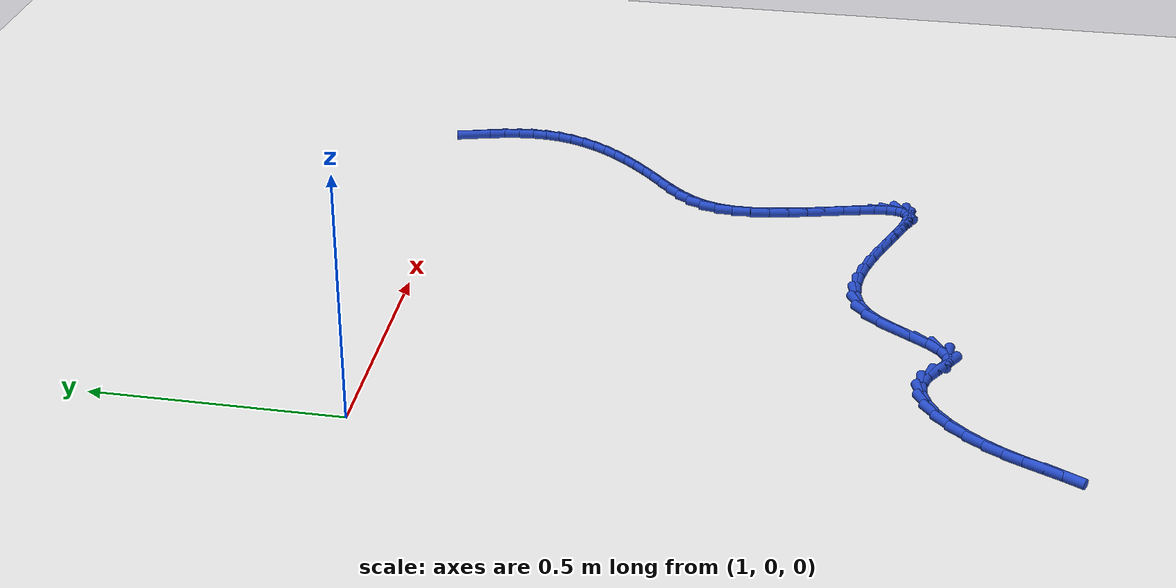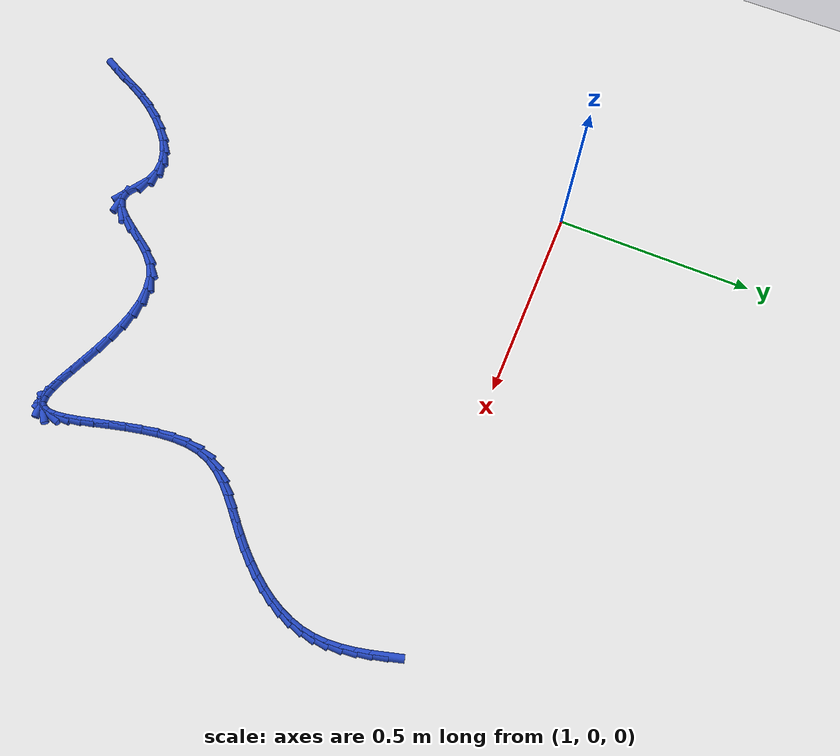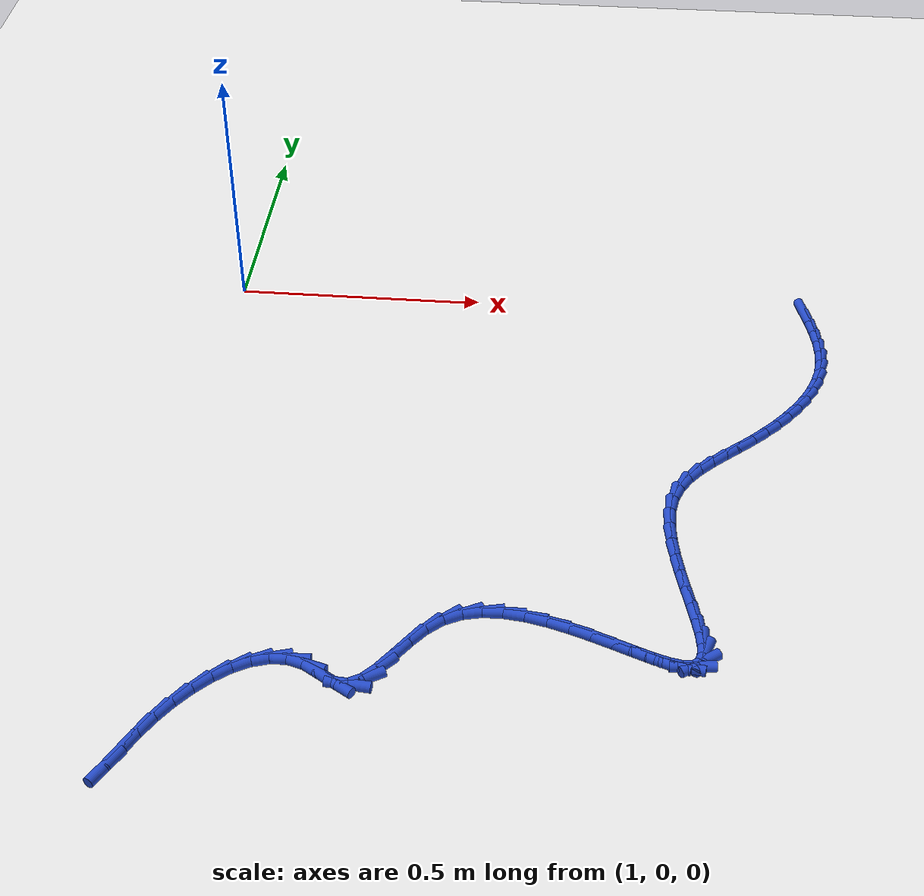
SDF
<sdf version="1.6">
 <world name="default">
  <model name="ground_plane">
   <static>1</static>
   <link name="link">
    <collision name="collision">
     <geometry><plane><normal>0 0 1</normal><size>100 100</size></plane></geometry>
     <surface><friction><ode><mu>100</mu><mu2>50</mu2></ode></friction></surface>
    </collision>
    <visual name="visual">
     <cast_shadows>0</cast_shadows>
     <geometry><plane><normal>0 0 1</normal><size>100 100</size></plane></geometry>
     <material>
      <script><uri>file://media/materials/scripts/gazebo.material</uri><name>Gazebo/WhiteGlow</name></script>
     </material>
    </visual>
   </link>
  </model>
  <model name="line">
   <link name="link_136">
    <pose>2.1801351254879155 0.005758020683772208 0.01 0 1.57 -1.301779435565862</pose>
    <collision name="collision">
     <geometry><cylinder><radius>0.01</radius><length>0.08</length></cylinder></geometry>
    </collision>
    <visual name="visual">
     <material>
      <script><name>Gazebo/Blue</name><uri>file://media/materials/scripts/gazebo.material</uri></script>
     </material>
     <geometry><cylinder><radius>0.01</radius><length>0.08</length></cylinder></geometry>
    </visual>
   </link>
   <link name="link_137">
    <pose>2.1896391408911238 -0.028714285961054346 0.01 0 1.57 -1.3454737841562365</pose>
    <collision name="collision">
     <geometry><cylinder><radius>0.01</radius><length>0.08</length></cylinder></geometry>
    </collision>
    <visual name="visual">
     <material>
      <script><name>Gazebo/Blue</name><uri>file://media/materials/scripts/gazebo.material</uri></script>
     </material>
     <geometry><cylinder><radius>0.01</radius><length>0.08</length></cylinder></geometry>
    </visual>
   </link>
   <link name="link_138">
    <pose>2.197482143768167 -0.06293110666666388 0.01 0 1.57 -1.4056809463743407</pose>
    <collision name="collision">
     <geometry><cylinder><radius>0.01</radius><length>0.08</length></cylinder></geometry>
    </collision>
    <visual name="visual">
     <material>
      <script><name>Gazebo/Blue</name><uri>file://media/materials/scripts/gazebo.material</uri></script>
     </material>
     <geometry><cylinder><radius>0.01</radius><length>0.08</length></cylinder></geometry>
    </visual>
   </link>
   <link name="link_139">
    <pose>2.2031158087223552 -0.0967400383906989 0.01 0 1.57 -1.4845112717701634</pose>
    <collision name="collision">
     <geometry><cylinder><radius>0.01</radius><length>0.08</length></cylinder></geometry>
    </collision>
    <visual name="visual">
     <material>
      <script><name>Gazebo/Blue</name><uri>file://media/materials/scripts/gazebo.material</uri></script>
     </material>
     <geometry><cylinder><radius>0.01</radius><length>0.08</length></cylinder></geometry>
    </visual>
   </link>
   <link name="link_140">
    <pose>2.2059918103569984 -0.12998867809080497 0.01 0 1.57 1.5575813408539083</pose>
    <collision name="collision">
     <geometry><cylinder><radius>0.01</radius><length>0.08</length></cylinder></geometry>
    </collision>
    <visual name="visual">
     <material>
      <script><name>Gazebo/Blue</name><uri>file://media/materials/scripts/gazebo.material</uri></script>
     </material>
     <geometry><cylinder><radius>0.01</radius><length>0.08</length></cylinder></geometry>
    </visual>
   </link>
   <link name="link_141">
    <pose>2.2055618232754073 -0.16252462272462764 0.01 0 1.57 1.4373398856692832</pose>
    <collision name="collision">
     <geometry><cylinder><radius>0.01</radius><length>0.08</length></cylinder></geometry>
    </collision>
    <visual name="visual">
     <material>
      <script><name>Gazebo/Blue</name><uri>file://media/materials/scripts/gazebo.material</uri></script>
     </material>
     <geometry><cylinder><radius>0.01</radius><length>0.08</length></cylinder></geometry>
    </visual>
   </link>
   <link name="link_142">
    <pose>2.201309160762779 -0.1942007630946006 0.01 0 1.57 1.3133021054380298</pose>
    <collision name="collision">
     <geometry><cylinder><radius>0.01</radius><length>0.08</length></cylinder></geometry>
    </collision>
    <visual name="visual">
     <material>
      <script><name>Gazebo/Blue</name><uri>file://media/materials/scripts/gazebo.material</uri></script>
     </material>
     <geometry><cylinder><radius>0.01</radius><length>0.08</length></cylinder></geometry>
    </visual>
   </link>
   <link name="link_143">
    <pose>2.193210960696452 -0.22495261767880384 0.01 0 1.57 1.2006109778874339</pose>
    <collision name="collision">
     <geometry><cylinder><radius>0.01</radius><length>0.08</length></cylinder></geometry>
    </collision>
    <visual name="visual">
     <material>
      <script><name>Gazebo/Blue</name><uri>file://media/materials/scripts/gazebo.material</uri></script>
     </material>
     <geometry><cylinder><radius>0.01</radius><length>0.08</length></cylinder></geometry>
    </visual>
   </link>
   <link name="link_144">
    <pose>2.1816352282022855 -0.2547811056112231 0.01 0 1.57 1.1010610410376571</pose>
    <collision name="collision">
     <geometry><cylinder><radius>0.01</radius><length>0.08</length></cylinder></geometry>
    </collision>
    <visual name="visual">
     <material>
      <script><name>Gazebo/Blue</name><uri>file://media/materials/scripts/gazebo.material</uri></script>
     </material>
     <geometry><cylinder><radius>0.01</radius><length>0.08</length></cylinder></geometry>
    </visual>
   </link>
   <link name="link_145">
    <pose>2.1669606620945356 -0.2836889353142515 0.01 0 1.57 1.0147438416265737</pose>
    <collision name="collision">
     <geometry><cylinder><radius>0.01</radius><length>0.08</length></cylinder></geometry>
    </collision>
    <visual name="visual">
     <material>
      <script><name>Gazebo/Blue</name><uri>file://media/materials/scripts/gazebo.material</uri></script>
     </material>
     <geometry><cylinder><radius>0.01</radius><length>0.08</length></cylinder></geometry>
    </visual>
   </link>
   <link name="link_146">
    <pose>2.149565961187457 -0.3116788152102786 0.01 0 1.57 0.9409019793520929</pose>
    <collision name="collision">
     <geometry><cylinder><radius>0.01</radius><length>0.08</length></cylinder></geometry>
    </collision>
    <visual name="visual">
     <material>
      <script><name>Gazebo/Blue</name><uri>file://media/materials/scripts/gazebo.material</uri></script>
     </material>
     <geometry><cylinder><radius>0.01</radius><length>0.08</length></cylinder></geometry>
    </visual>
   </link>
   <link name="link_147">
    <pose>2.129829824295306 -0.33875345372169763 0.01 0 1.57 0.8783833198304736</pose>
    <collision name="collision">
     <geometry><cylinder><radius>0.01</radius><length>0.08</length></cylinder></geometry>
    </collision>
    <visual name="visual">
     <material>
      <script><name>Gazebo/Blue</name><uri>file://media/materials/scripts/gazebo.material</uri></script>
     </material>
     <geometry><cylinder><radius>0.01</radius><length>0.08</length></cylinder></geometry>
    </visual>
   </link>
   <link name="link_148">
    <pose>2.10813095023234 -0.3649155592708982 0.01 0 1.57 0.8259520113368369</pose>
    <collision name="collision">
     <geometry><cylinder><radius>0.01</radius><length>0.08</length></cylinder></geometry>
    </collision>
    <visual name="visual">
     <material>
      <script><name>Gazebo/Blue</name><uri>file://media/materials/scripts/gazebo.material</uri></script>
     </material>
     <geometry><cylinder><radius>0.01</radius><length>0.08</length></cylinder></geometry>
    </visual>
   </link>
   <link name="link_149">
    <pose>2.084848037812812 -0.3901678402802734 0.01 0 1.57 0.7824680661480187</pose>
    <collision name="collision">
     <geometry><cylinder><radius>0.01</radius><length>0.08</length></cylinder></geometry>
    </collision>
    <visual name="visual">
     <material>
      <script><name>Gazebo/Blue</name><uri>file://media/materials/scripts/gazebo.material</uri></script>
     </material>
     <geometry><cylinder><radius>0.01</radius><length>0.08</length></cylinder></geometry>
    </visual>
   </link>
   <link name="link_150">
    <pose>2.060359785850979 -0.4145130051722128 0.01 0 1.57 0.7471839334304353</pose>
    <collision name="collision">
     <geometry><cylinder><radius>0.01</radius><length>0.08</length></cylinder></geometry>
    </collision>
    <visual name="visual">
     <material>
      <script><name>Gazebo/Blue</name><uri>file://media/materials/scripts/gazebo.material</uri></script>
     </material>
     <geometry><cylinder><radius>0.01</radius><length>0.08</length></cylinder></geometry>
    </visual>
   </link>
   <link name="link_151">
    <pose>2.035049645954795 -0.4379590572546394 0.01 0 1.57 0.7305253163471624</pose>
    <collision name="collision">
     <geometry><cylinder><radius>0.01</radius><length>0.08</length></cylinder></geometry>
    </collision>
    <visual name="visual">
     <material>
      <script><name>Gazebo/Blue</name><uri>file://media/materials/scripts/gazebo.material</uri></script>
     </material>
     <geometry><cylinder><radius>0.01</radius><length>0.08</length></cylinder></geometry>
    </visual>
   </link>
   <link name="link_152">
    <pose>2.009555945369066 -0.4607979459538032 0.01 0 1.57 0.7493894641428976</pose>
    <collision name="collision">
     <geometry><cylinder><radius>0.01</radius><length>0.08</length></cylinder></geometry>
    </collision>
    <visual name="visual">
     <material>
      <script><name>Gazebo/Blue</name><uri>file://media/materials/scripts/gazebo.material</uri></script>
     </material>
     <geometry><cylinder><radius>0.01</radius><length>0.08</length></cylinder></geometry>
    </visual>
   </link>
   <link name="link_153">
    <pose>1.9848955703682591 -0.4837433572273719 0.01 0 1.57 0.8073009271312322</pose>
    <collision name="collision">
     <geometry><cylinder><radius>0.01</radius><length>0.08</length></cylinder></geometry>
    </collision>
    <visual name="visual">
     <material>
      <script><name>Gazebo/Blue</name><uri>file://media/materials/scripts/gazebo.material</uri></script>
     </material>
     <geometry><cylinder><radius>0.01</radius><length>0.08</length></cylinder></geometry>
    </visual>
   </link>
   <link name="link_154">
    <pose>1.9621161167022743 -0.507543189154866 0.01 0 1.57 0.9074587390301642</pose>
    <collision name="collision">
     <geometry><cylinder><radius>0.01</radius><length>0.08</length></cylinder></geometry>
    </collision>
    <visual name="visual">
     <material>
      <script><name>Gazebo/Blue</name><uri>file://media/materials/scripts/gazebo.material</uri></script>
     </material>
     <geometry><cylinder><radius>0.01</radius><length>0.08</length></cylinder></geometry>
    </visual>
   </link>
   <link name="link_155">
    <pose>1.9422651801210096 -0.532945339815803 0.01 0 1.57 1.051206801150965</pose>
    <collision name="collision">
     <geometry><cylinder><radius>0.01</radius><length>0.08</length></cylinder></geometry>
    </collision>
    <visual name="visual">
     <material>
      <script><name>Gazebo/Blue</name><uri>file://media/materials/scripts/gazebo.material</uri></script>
     </material>
     <geometry><cylinder><radius>0.01</radius><length>0.08</length></cylinder></geometry>
    </visual>
   </link>
   <link name="link_156">
    <pose>1.9263903563743638 -0.560697707289704 0.01 0 1.57 1.2325786371314371</pose>
    <collision name="collision">
     <geometry><cylinder><radius>0.01</radius><length>0.08</length></cylinder></geometry>
    </collision>
    <visual name="visual">
     <material>
      <script><name>Gazebo/Blue</name><uri>file://media/materials/scripts/gazebo.material</uri></script>
     </material>
     <geometry><cylinder><radius>0.01</radius><length>0.08</length></cylinder></geometry>
    </visual>
   </link>
   <link name="link_157">
    <pose>1.9155392321466704 -0.5915481822823389 0.01 0 1.57 1.4220706016872342</pose>
    <collision name="collision">
     <geometry><cylinder><radius>0.01</radius><length>0.08</length></cylinder></geometry>
    </collision>
    <visual name="visual">
     <material>
      <script><name>Gazebo/Blue</name><uri>file://media/materials/scripts/gazebo.material</uri></script>
     </material>
     <geometry><cylinder><radius>0.01</radius><length>0.08</length></cylinder></geometry>
    </visual>
   </link>
   <link name="link_158">
    <pose>1.9103860827646393 -0.625941011602484 0.01 0 1.57 1.5668659972041452</pose>
    <collision name="collision">
     <geometry><cylinder><radius>0.01</radius><length>0.08</length></cylinder></geometry>
    </collision>
    <visual name="visual">
     <material>
      <script><name>Gazebo/Blue</name><uri>file://media/materials/scripts/gazebo.material</uri></script>
     </material>
     <geometry><cylinder><radius>0.01</radius><length>0.08</length></cylinder></geometry>
    </visual>
   </link>
   <link name="link_159">
    <pose>1.9102396037536407 -0.6632097071078549 0.01 0 1.57 -1.4727862078294334</pose>
    <collision name="collision">
     <geometry><cylinder><radius>0.01</radius><length>0.08</length></cylinder></geometry>
    </collision>
    <visual name="visual">
     <material>
      <script><name>Gazebo/Blue</name><uri>file://media/materials/scripts/gazebo.material</uri></script>
     </material>
     <geometry><cylinder><radius>0.01</radius><length>0.08</length></cylinder></geometry>
    </visual>
   </link>
   <link name="link_160">
    <pose>1.914096325962546 -0.7024338722310948 0.01 0 1.57 -1.402107223673136</pose>
    <collision name="collision">
     <geometry><cylinder><radius>0.01</radius><length>0.08</length></cylinder></geometry>
    </collision>
    <visual name="visual">
     <material>
      <script><name>Gazebo/Blue</name><uri>file://media/materials/scripts/gazebo.material</uri></script>
     </material>
     <geometry><cylinder><radius>0.01</radius><length>0.08</length></cylinder></geometry>
    </visual>
   </link>
   <link name="link_161">
    <pose>1.9209527802402293 -0.7426931104048479 0.01 0 1.57 -1.3549441070876143</pose>
    <collision name="collision">
     <geometry><cylinder><radius>0.01</radius><length>0.08</length></cylinder></geometry>
    </collision>
    <visual name="visual">
     <material>
      <script><name>Gazebo/Blue</name><uri>file://media/materials/scripts/gazebo.material</uri></script>
     </material>
     <geometry><cylinder><radius>0.01</radius><length>0.08</length></cylinder></geometry>
    </visual>
   </link>
   <link name="link_162">
    <pose>1.9298054974355616 -0.7830670250617542 0.01 0 1.57 -1.3269249236219451</pose>
    <collision name="collision">
     <geometry><cylinder><radius>0.01</radius><length>0.08</length></cylinder></geometry>
    </collision>
    <visual name="visual">
     <material>
      <script><name>Gazebo/Blue</name><uri>file://media/materials/scripts/gazebo.material</uri></script>
     </material>
     <geometry><cylinder><radius>0.01</radius><length>0.08</length></cylinder></geometry>
    </visual>
   </link>
   <link name="link_163">
    <pose>1.9396510083974166 -0.8226352196344588 0.01 0 1.57 -1.3165298714620197</pose>
    <collision name="collision">
     <geometry><cylinder><radius>0.01</radius><length>0.08</length></cylinder></geometry>
    </collision>
    <visual name="visual">
     <material>
      <script><name>Gazebo/Blue</name><uri>file://media/materials/scripts/gazebo.material</uri></script>
     </material>
     <geometry><cylinder><radius>0.01</radius><length>0.08</length></cylinder></geometry>
    </visual>
   </link>
   <link name="link_164">
    <pose>1.9494858439746654 -0.8604772975556023 0.01 0 1.57 -1.32523479111072</pose>
    <collision name="collision">
     <geometry><cylinder><radius>0.01</radius><length>0.08</length></cylinder></geometry>
    </collision>
    <visual name="visual">
     <material>
      <script><name>Gazebo/Blue</name><uri>file://media/materials/scripts/gazebo.material</uri></script>
     </material>
     <geometry><cylinder><radius>0.01</radius><length>0.08</length></cylinder></geometry>
    </visual>
   </link>
   <link name="link_165">
    <pose>1.958306535016181 -0.8956728622578289 0.01 0 1.57 -1.3589320304291124</pose>
    <collision name="collision">
     <geometry><cylinder><radius>0.01</radius><length>0.08</length></cylinder></geometry>
    </collision>
    <visual name="visual">
     <material>
      <script><name>Gazebo/Blue</name><uri>file://media/materials/scripts/gazebo.material</uri></script>
     </material>
     <geometry><cylinder><radius>0.01</radius><length>0.08</length></cylinder></geometry>
    </visual>
   </link>
   <link name="link_166">
    <pose>1.9651096123708356 -0.92730151717378 0.01 0 1.57 -1.4323434553263972</pose>
    <collision name="collision">
     <geometry><cylinder><radius>0.01</radius><length>0.08</length></cylinder></geometry>
    </collision>
    <visual name="visual">
     <material>
      <script><name>Gazebo/Blue</name><uri>file://media/materials/scripts/gazebo.material</uri></script>
     </material>
     <geometry><cylinder><radius>0.01</radius><length>0.08</length></cylinder></geometry>
    </visual>
   </link>
   <link name="link_167">
    <pose>1.968891606887502 -0.9544428657360994 0.01 0 1.57 1.5596363306048981</pose>
    <collision name="collision">
     <geometry><cylinder><radius>0.01</radius><length>0.08</length></cylinder></geometry>
    </collision>
    <visual name="visual">
     <material>
      <script><name>Gazebo/Blue</name><uri>file://media/materials/scripts/gazebo.material</uri></script>
     </material>
     <geometry><cylinder><radius>0.01</radius><length>0.08</length></cylinder></geometry>
    </visual>
   </link>
   <link name="link_168">
    <pose>1.9686490494150513 -0.9761765113774281 0.01 0 1.57 1.2411567995300519</pose>
    <collision name="collision">
     <geometry><cylinder><radius>0.01</radius><length>0.08</length></cylinder></geometry>
    </collision>
    <visual name="visual">
     <material>
      <script><name>Gazebo/Blue</name><uri>file://media/materials/scripts/gazebo.material</uri></script>
     </material>
     <geometry><cylinder><radius>0.01</radius><length>0.08</length></cylinder></geometry>
    </visual>
   </link>
   <link name="link_169">
    <pose>1.9633784708023576 -0.9915820575304107 0.01 0 1.57 0.6287290795663306</pose>
    <collision name="collision">
     <geometry><cylinder><radius>0.01</radius><length>0.08</length></cylinder></geometry>
    </collision>
    <visual name="visual">
     <material>
      <script><name>Gazebo/Blue</name><uri>file://media/materials/scripts/gazebo.material</uri></script>
     </material>
     <geometry><cylinder><radius>0.01</radius><length>0.08</length></cylinder></geometry>
    </visual>
   </link>
   <link name="link_170">
    <pose>1.9521075941025894 -0.999777900692462 0.01 0 1.57 0.06451088605592041</pose>
    <collision name="collision">
     <geometry><cylinder><radius>0.01</radius><length>0.08</length></cylinder></geometry>
    </collision>
    <visual name="visual">
     <material>
      <script><name>Gazebo/Blue</name><uri>file://media/materials/scripts/gazebo.material</uri></script>
     </material>
     <geometry><cylinder><radius>0.01</radius><length>0.08</length></cylinder></geometry>
    </visual>
   </link>
   <link name="link_171">
    <pose>1.9346850682770884 -1.0009034050241727 0.01 0 1.57 -0.20323510073959156</pose>
    <collision name="collision">
     <geometry><cylinder><radius>0.01</radius><length>0.08</length></cylinder></geometry>
    </collision>
    <visual name="visual">
     <material>
      <script><name>Gazebo/Blue</name><uri>file://media/materials/scripts/gazebo.material</uri></script>
     </material>
     <geometry><cylinder><radius>0.01</radius><length>0.08</length></cylinder></geometry>
    </visual>
   </link>
   <link name="link_172">
    <pose>1.911842453653445 -0.9961959923127903 0.01 0 1.57 -0.32456896479292313</pose>
    <collision name="collision">
     <geometry><cylinder><radius>0.01</radius><length>0.08</length></cylinder></geometry>
    </collision>
    <visual name="visual">
     <material>
      <script><name>Gazebo/Blue</name><uri>file://media/materials/scripts/gazebo.material</uri></script>
     </material>
     <geometry><cylinder><radius>0.01</radius><length>0.08</length></cylinder></geometry>
    </visual>
   </link>
   <link name="link_173">
    <pose>1.8843549204507337 -0.9869473210172933 0.01 0 1.57 -0.37927850668077806</pose>
    <collision name="collision">
     <geometry><cylinder><radius>0.01</radius><length>0.08</length></cylinder></geometry>
    </collision>
    <visual name="visual">
     <material>
      <script><name>Gazebo/Blue</name><uri>file://media/materials/scripts/gazebo.material</uri></script>
     </material>
     <geometry><cylinder><radius>0.01</radius><length>0.08</length></cylinder></geometry>
    </visual>
   </link>
   <link name="link_174">
    <pose>1.8529976388880254 -0.9744490495966598 0.01 0 1.57 -0.39729317348965526</pose>
    <collision name="collision">
     <geometry><cylinder><radius>0.01</radius><length>0.08</length></cylinder></geometry>
    </collision>
    <visual name="visual">
     <material>
      <script><name>Gazebo/Blue</name><uri>file://media/materials/scripts/gazebo.material</uri></script>
     </material>
     <geometry><cylinder><radius>0.01</radius><length>0.08</length></cylinder></geometry>
    </visual>
   </link>
   <link name="link_175">
    <pose>1.818545779184395 -0.9599928365098687 0.01 0 1.57 -0.39017414387452426</pose>
    <collision name="collision">
     <geometry><cylinder><radius>0.01</radius><length>0.08</length></cylinder></geometry>
    </collision>
    <visual name="visual">
     <material>
      <script><name>Gazebo/Blue</name><uri>file://media/materials/scripts/gazebo.material</uri></script>
     </material>
     <geometry><cylinder><radius>0.01</radius><length>0.08</length></cylinder></geometry>
    </visual>
   </link>
   <link name="link_176">
    <pose>1.7817745115589116 -0.9448703402158967 0.01 0 1.57 -0.3617146817586868</pose>
    <collision name="collision">
     <geometry><cylinder><radius>0.01</radius><length>0.08</length></cylinder></geometry>
    </collision>
    <visual name="visual">
     <material>
      <script><name>Gazebo/Blue</name><uri>file://media/materials/scripts/gazebo.material</uri></script>
     </material>
     <geometry><cylinder><radius>0.01</radius><length>0.08</length></cylinder></geometry>
    </visual>
   </link>
   <link name="link_177">
    <pose>1.743459006230652 -0.9303732191737242 0.01 0 1.57 -0.31139683509368227</pose>
    <collision name="collision">
     <geometry><cylinder><radius>0.01</radius><length>0.08</length></cylinder></geometry>
    </collision>
    <visual name="visual">
     <material>
      <script><name>Gazebo/Blue</name><uri>file://media/materials/scripts/gazebo.material</uri></script>
     </material>
     <geometry><cylinder><radius>0.01</radius><length>0.08</length></cylinder></geometry>
    </visual>
   </link>
   <link name="link_178">
    <pose>1.7043744334186843 -0.9177931318423272 0.01 0 1.57 -0.2353650124725913</pose>
    <collision name="collision">
     <geometry><cylinder><radius>0.01</radius><length>0.08</length></cylinder></geometry>
    </collision>
    <visual name="visual">
     <material>
      <script><name>Gazebo/Blue</name><uri>file://media/materials/scripts/gazebo.material</uri></script>
     </material>
     <geometry><cylinder><radius>0.01</radius><length>0.08</length></cylinder></geometry>
    </visual>
   </link>
   <link name="link_179">
    <pose>1.665295963342085 -0.9084217366806856 0.01 0 1.57 -0.12651133534466738</pose>
    <collision name="collision">
     <geometry><cylinder><radius>0.01</radius><length>0.08</length></cylinder></geometry>
    </collision>
    <visual name="visual">
     <material>
      <script><name>Gazebo/Blue</name><uri>file://media/materials/scripts/gazebo.material</uri></script>
     </material>
     <geometry><cylinder><radius>0.01</radius><length>0.08</length></cylinder></geometry>
    </visual>
   </link>
   <link name="link_180">
    <pose>1.6269987662199237 -0.903550692147777 0.01 0 1.57 0.025061318503237635</pose>
    <collision name="collision">
     <geometry><cylinder><radius>0.01</radius><length>0.08</length></cylinder></geometry>
    </collision>
    <visual name="visual">
     <material>
      <script><name>Gazebo/Blue</name><uri>file://media/materials/scripts/gazebo.material</uri></script>
     </material>
     <geometry><cylinder><radius>0.01</radius><length>0.08</length></cylinder></geometry>
    </visual>
   </link>
   <link name="link_181">
    <pose>1.590258012271275 -0.9044716567025795 0.01 0 1.57 0.2285657416790955</pose>
    <collision name="collision">
     <geometry><cylinder><radius>0.01</radius><length>0.08</length></cylinder></geometry>
    </collision>
    <visual name="visual">
     <material>
      <script><name>Gazebo/Blue</name><uri>file://media/materials/scripts/gazebo.material</uri></script>
     </material>
     <geometry><cylinder><radius>0.01</radius><length>0.08</length></cylinder></geometry>
    </visual>
   </link>
   <link name="link_182">
    <pose>1.5558488717152108 -0.9124762888040714 0.01 0 1.57 0.4820992125204869</pose>
    <collision name="collision">
     <geometry><cylinder><radius>0.01</radius><length>0.08</length></cylinder></geometry>
    </collision>
    <visual name="visual">
     <material>
      <script><name>Gazebo/Blue</name><uri>file://media/materials/scripts/gazebo.material</uri></script>
     </material>
     <geometry><cylinder><radius>0.01</radius><length>0.08</length></cylinder></geometry>
    </visual>
   </link>
   <link name="link_183">
    <pose>1.5245465147708024 -0.9288562469112316 0.01 0 1.57 0.7432579027813975</pose>
    <collision name="collision">
     <geometry><cylinder><radius>0.01</radius><length>0.08</length></cylinder></geometry>
    </collision>
    <visual name="visual">
     <material>
      <script><name>Gazebo/Blue</name><uri>file://media/materials/scripts/gazebo.material</uri></script>
     </material>
     <geometry><cylinder><radius>0.01</radius><length>0.08</length></cylinder></geometry>
    </visual>
   </link>
   <link name="link_184">
    <pose>1.496917310748712 -0.9542497372241464 0.01 0 1.57 0.9073095617667624</pose>
    <collision name="collision">
     <geometry><cylinder><radius>0.01</radius><length>0.08</length></cylinder></geometry>
    </collision>
    <visual name="visual">
     <material>
      <script><name>Gazebo/Blue</name><uri>file://media/materials/scripts/gazebo.material</uri></script>
     </material>
     <geometry><cylinder><radius>0.01</radius><length>0.08</length></cylinder></geometry>
    </visual>
   </link>
   <link name="link_185">
    <pose>1.4723654208094952 -0.9856577809001716 0.01 0 1.57 0.9752740469333037</pose>
    <collision name="collision">
     <geometry><cylinder><radius>0.01</radius><length>0.08</length></cylinder></geometry>
    </collision>
    <visual name="visual">
     <material>
      <script><name>Gazebo/Blue</name><uri>file://media/materials/scripts/gazebo.material</uri></script>
     </material>
     <geometry><cylinder><radius>0.01</radius><length>0.08</length></cylinder></geometry>
    </visual>
   </link>
   <link name="link_186">
    <pose>1.4498930050472405 -1.0188233178605295 0.01 0 1.57 0.9616953793761015</pose>
    <collision name="collision">
     <geometry><cylinder><radius>0.01</radius><length>0.08</length></cylinder></geometry>
    </collision>
    <visual name="visual">
     <material>
      <script><name>Gazebo/Blue</name><uri>file://media/materials/scripts/gazebo.material</uri></script>
     </material>
     <geometry><cylinder><radius>0.01</radius><length>0.08</length></cylinder></geometry>
    </visual>
   </link>
   <link name="link_187">
    <pose>1.4285018367746665 -1.0494880775759694 0.01 0 1.57 0.842785706351324</pose>
    <collision name="collision">
     <geometry><cylinder><radius>0.01</radius><length>0.08</length></cylinder></geometry>
    </collision>
    <visual name="visual">
     <material>
      <script><name>Gazebo/Blue</name><uri>file://media/materials/scripts/gazebo.material</uri></script>
     </material>
     <geometry><cylinder><radius>0.01</radius><length>0.08</length></cylinder></geometry>
    </visual>
   </link>
   <link name="link_188">
    <pose>1.4071936893044936 -1.0733937895172365 0.01 0 1.57 0.52554502717043</pose>
    <collision name="collision">
     <geometry><cylinder><radius>0.01</radius><length>0.08</length></cylinder></geometry>
    </collision>
    <visual name="visual">
     <material>
      <script><name>Gazebo/Blue</name><uri>file://media/materials/scripts/gazebo.material</uri></script>
     </material>
     <geometry><cylinder><radius>0.01</radius><length>0.08</length></cylinder></geometry>
    </visual>
   </link>
   <link name="link_189">
    <pose>1.3849703359494392 -1.0862821831550795 0.01 0 1.57 -0.09833938548766052</pose>
    <collision name="collision">
     <geometry><cylinder><radius>0.01</radius><length>0.08</length></cylinder></geometry>
    </collision>
    <visual name="visual">
     <material>
      <script><name>Gazebo/Blue</name><uri>file://media/materials/scripts/gazebo.material</uri></script>
     </material>
     <geometry><cylinder><radius>0.01</radius><length>0.08</length></cylinder></geometry>
    </visual>
   </link>
   <link name="link_190">
    <pose>1.3608340873542706 -1.0839009583618462 0.01 0 1.57 -0.5745359245234821</pose>
    <collision name="collision">
     <geometry><cylinder><radius>0.01</radius><length>0.08</length></cylinder></geometry>
    </collision>
    <visual name="visual">
     <material>
      <script><name>Gazebo/Blue</name><uri>file://media/materials/scripts/gazebo.material</uri></script>
     </material>
     <geometry><cylinder><radius>0.01</radius><length>0.08</length></cylinder></geometry>
    </visual>
   </link>
   <link name="link_191">
    <pose>1.3342071187278617 -1.0666630124078726 0.01 0 1.57 -0.5798352311809014</pose>
    <collision name="collision">
     <geometry><cylinder><radius>0.01</radius><length>0.08</length></cylinder></geometry>
    </collision>
    <visual name="visual">
     <material>
      <script><name>Gazebo/Blue</name><uri>file://media/materials/scripts/gazebo.material</uri></script>
     </material>
     <geometry><cylinder><radius>0.01</radius><length>0.08</length></cylinder></geometry>
    </visual>
   </link>
   <link name="link_192">
    <pose>1.3056829451014864 -1.0479815903997236 0.01 0 1.57 -0.2964066493558561</pose>
    <collision name="collision">
     <geometry><cylinder><radius>0.01</radius><length>0.08</length></cylinder></geometry>
    </collision>
    <visual name="visual">
     <material>
      <script><name>Gazebo/Blue</name><uri>file://media/materials/scripts/gazebo.material</uri></script>
     </material>
     <geometry><cylinder><radius>0.01</radius><length>0.08</length></cylinder></geometry>
    </visual>
   </link>
   <link name="link_193">
    <pose>1.2759884327204163 -1.0389127850669355 0.01 0 1.57 0.027789749447211447</pose>
    <collision name="collision">
     <geometry><cylinder><radius>0.01</radius><length>0.08</length></cylinder></geometry>
    </collision>
    <visual name="visual">
     <material>
      <script><name>Gazebo/Blue</name><uri>file://media/materials/scripts/gazebo.material</uri></script>
     </material>
     <geometry><cylinder><radius>0.01</radius><length>0.08</length></cylinder></geometry>
    </visual>
   </link>
   <link name="link_194">
    <pose>1.2456884719756656 -1.0397550302090568 0.01 0 1.57 0.30382876862011665</pose>
    <collision name="collision">
     <geometry><cylinder><radius>0.01</radius><length>0.08</length></cylinder></geometry>
    </collision>
    <visual name="visual">
     <material>
      <script><name>Gazebo/Blue</name><uri>file://media/materials/scripts/gazebo.material</uri></script>
     </material>
     <geometry><cylinder><radius>0.01</radius><length>0.08</length></cylinder></geometry>
    </visual>
   </link>
   <link name="link_195">
    <pose>1.2153248916367148 -1.049275117394196 0.01 0 1.57 0.5163003517193915</pose>
    <collision name="collision">
     <geometry><cylinder><radius>0.01</radius><length>0.08</length></cylinder></geometry>
    </collision>
    <visual name="visual">
     <material>
      <script><name>Gazebo/Blue</name><uri>file://media/materials/scripts/gazebo.material</uri></script>
     </material>
     <geometry><cylinder><radius>0.01</radius><length>0.08</length></cylinder></geometry>
    </visual>
   </link>
   <link name="link_196">
    <pose>1.185439520473041 -1.066239838190463 0.01 0 1.57 0.6765103146762809</pose>
    <collision name="collision">
     <geometry><cylinder><radius>0.01</radius><length>0.08</length></cylinder></geometry>
    </collision>
    <visual name="visual">
     <material>
      <script><name>Gazebo/Blue</name><uri>file://media/materials/scripts/gazebo.material</uri></script>
     </material>
     <geometry><cylinder><radius>0.01</radius><length>0.08</length></cylinder></geometry>
    </visual>
   </link>
   <link name="link_197">
    <pose>1.1565741872541246 -1.0894159841659652 0.01 0 1.57 0.8007400811974985</pose>
    <collision name="collision">
     <geometry><cylinder><radius>0.01</radius><length>0.08</length></cylinder></geometry>
    </collision>
    <visual name="visual">
     <material>
      <script><name>Gazebo/Blue</name><uri>file://media/materials/scripts/gazebo.material</uri></script>
     </material>
     <geometry><cylinder><radius>0.01</radius><length>0.08</length></cylinder></geometry>
    </visual>
   </link>
   <link name="link_198">
    <pose>1.1292707207494428 -1.1175703468888134 0.01 0 1.57 0.9021968900965373</pose>
    <collision name="collision">
     <geometry><cylinder><radius>0.01</radius><length>0.08</length></cylinder></geometry>
    </collision>
    <visual name="visual">
     <material>
      <script><name>Gazebo/Blue</name><uri>file://media/materials/scripts/gazebo.material</uri></script>
     </material>
     <geometry><cylinder><radius>0.01</radius><length>0.08</length></cylinder></geometry>
    </visual>
   </link>
   <link name="link_199">
    <pose>1.104070949728476 -1.1494697179271154 0.01 0 1.57 0.9906106454418829</pose>
    <collision name="collision">
     <geometry><cylinder><radius>0.01</radius><length>0.08</length></cylinder></geometry>
    </collision>
    <visual name="visual">
     <material>
      <script><name>Gazebo/Blue</name><uri>file://media/materials/scripts/gazebo.material</uri></script>
     </material>
     <geometry><cylinder><radius>0.01</radius><length>0.08</length></cylinder></geometry>
    </visual>
   </link>
   <link name="link_200">
    <pose>1.081516702960701 -1.183880888848981 0.01 0 1.57 1.0709191971032248</pose>
    <collision name="collision">
     <geometry><cylinder><radius>0.01</radius><length>0.08</length></cylinder></geometry>
    </collision>
    <visual name="visual">
     <material>
      <script><name>Gazebo/Blue</name><uri>file://media/materials/scripts/gazebo.material</uri></script>
     </material>
     <geometry><cylinder><radius>0.01</radius><length>0.08</length></cylinder></geometry>
    </visual>
   </link>
   <link name="link_201">
    <pose>1.0620510812793802 -1.2195228784113405 0.01 0 1.57 1.12269429904038</pose>
    <collision name="collision">
     <geometry><cylinder><radius>0.01</radius><length>0.08</length></cylinder></geometry>
    </collision>
    <visual name="visual">
     <material>
      <script><name>Gazebo/Blue</name><uri>file://media/materials/scripts/gazebo.material</uri></script>
     </material>
     <geometry><cylinder><radius>0.01</radius><length>0.08</length></cylinder></geometry>
    </visual>
   </link>
   <link name="link_202">
    <pose>1.0451633744852449 -1.254653172029087 0.01 0 1.57 1.1308197440497454</pose>
    <collision name="collision">
     <geometry><cylinder><radius>0.01</radius><length>0.08</length></cylinder></geometry>
    </collision>
    <visual name="visual">
     <material>
      <script><name>Gazebo/Blue</name><uri>file://media/materials/scripts/gazebo.material</uri></script>
     </material>
     <geometry><cylinder><radius>0.01</radius><length>0.08</length></cylinder></geometry>
    </visual>
   </link>
   <link name="link_203">
    <pose>1.029808597261041 -1.2872707282471476 0.01 0 1.57 1.0840152516041701</pose>
    <collision name="collision">
     <geometry><cylinder><radius>0.01</radius><length>0.08</length></cylinder></geometry>
    </collision>
    <visual name="visual">
     <material>
      <script><name>Gazebo/Blue</name><uri>file://media/materials/scripts/gazebo.material</uri></script>
     </material>
     <geometry><cylinder><radius>0.01</radius><length>0.08</length></cylinder></geometry>
    </visual>
   </link>
  </model>
 </world>
</sdf>
